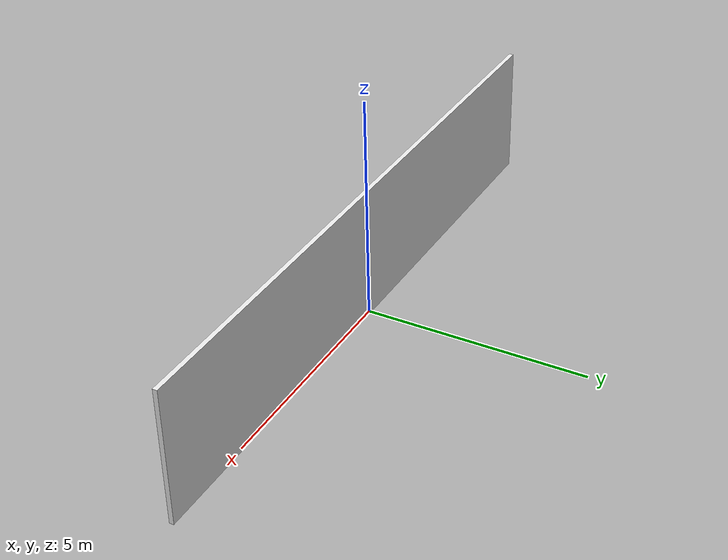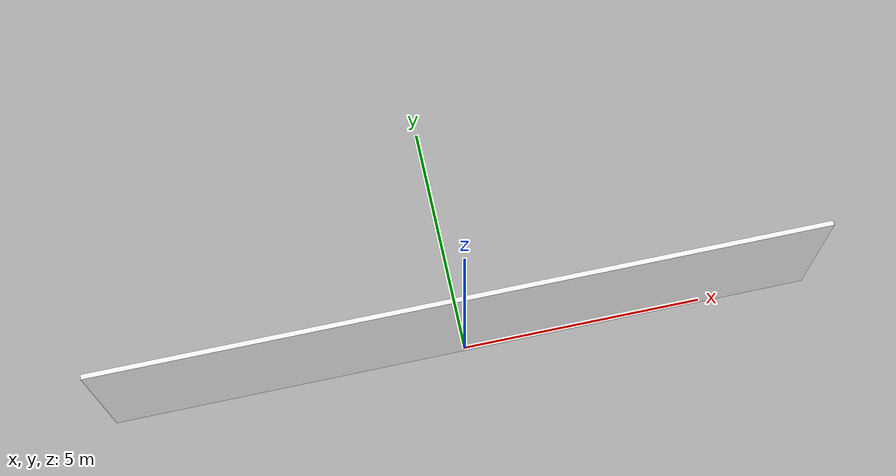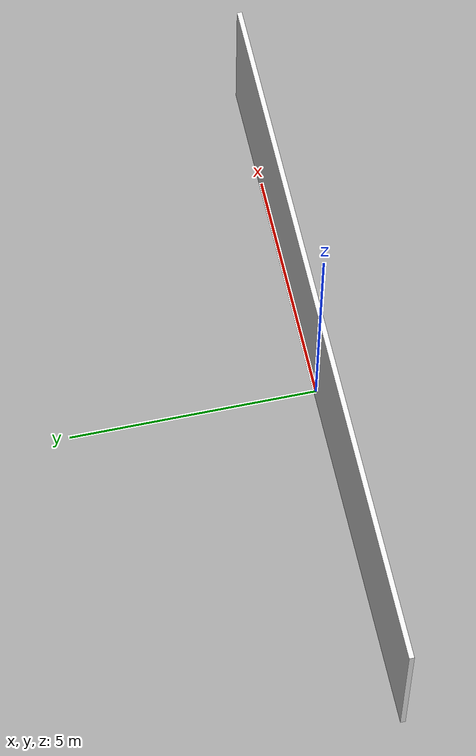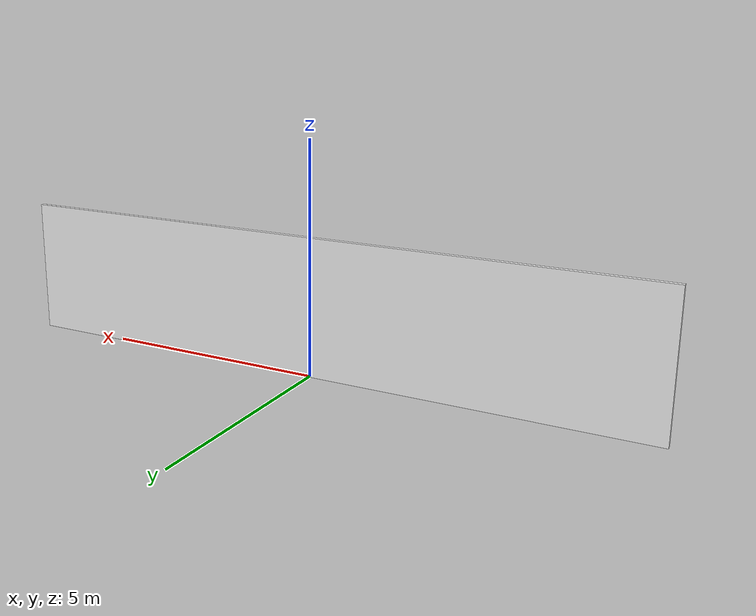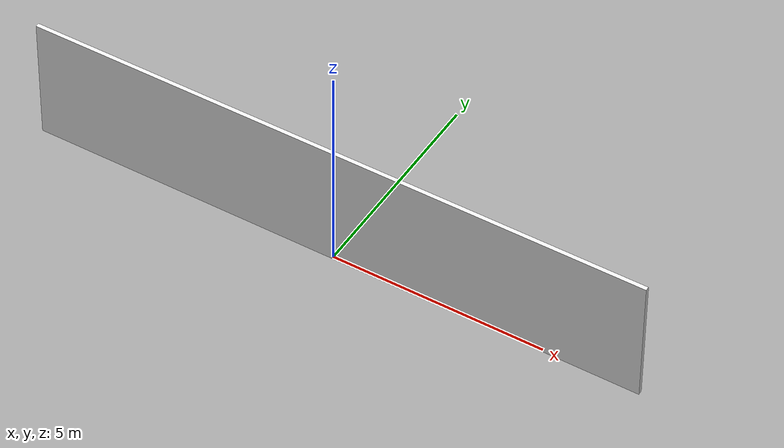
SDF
<?xml version="1.0" ?>
<sdf version="1.5">
  <model name="AIGC2_wall_14m">
    <static>true</static>
    <link name="link">
      <pose>0 0 1.5 0 0 0</pose>
      <collision name="collision">
        <geometry>
          <box>
            <size>14.5 0.1 3.0</size>
          </box>
        </geometry>
      </collision>
      <visual name="visual">
        <cast_shadows>false</cast_shadows>
        <geometry>
          <box>
            <size>14.5 0.1 3.0</size>
          </box>
        </geometry>
        <material>
			<script>
				<name>Gazebo/White</name>
				<uri>file://media/materials/scripts/gazebo.material</uri>
			</script>
        </material>
      </visual>
    </link>
  </model>
</sdf>
